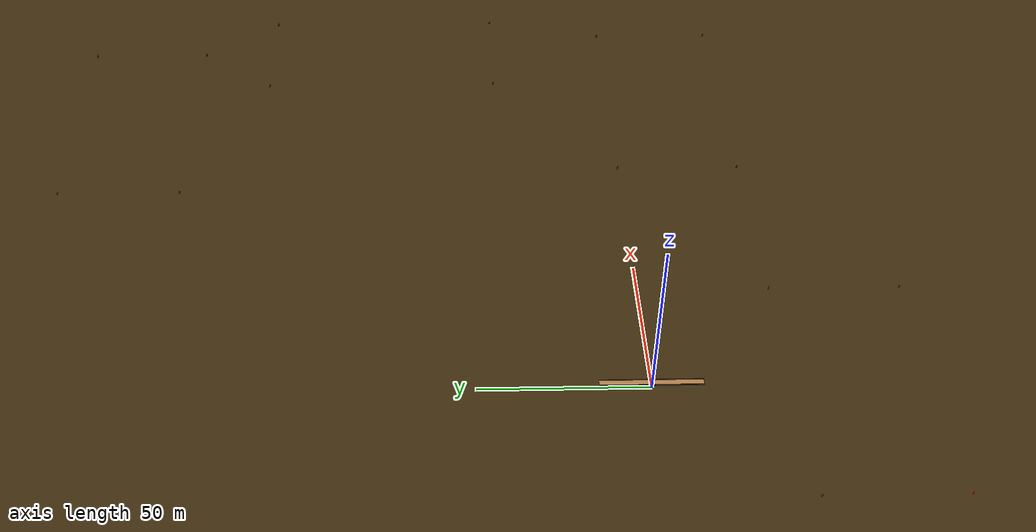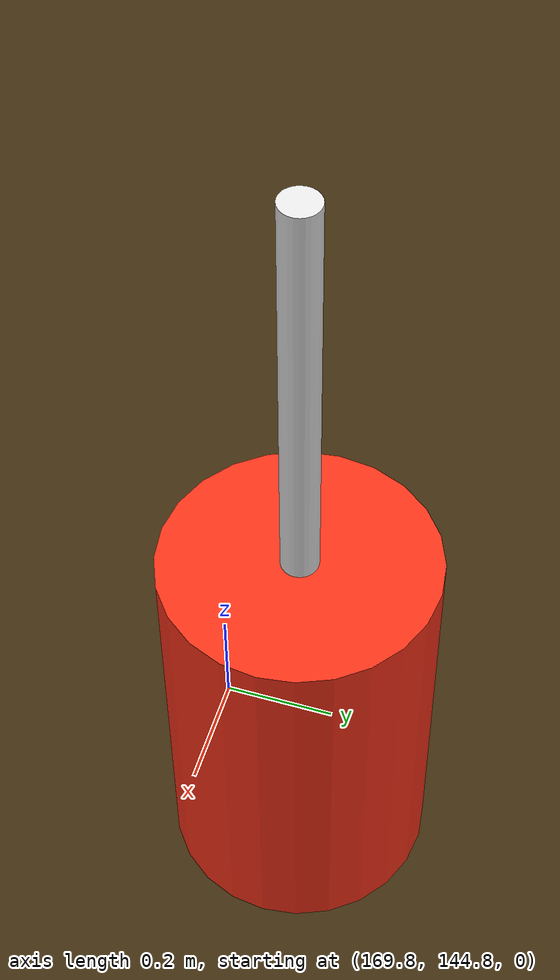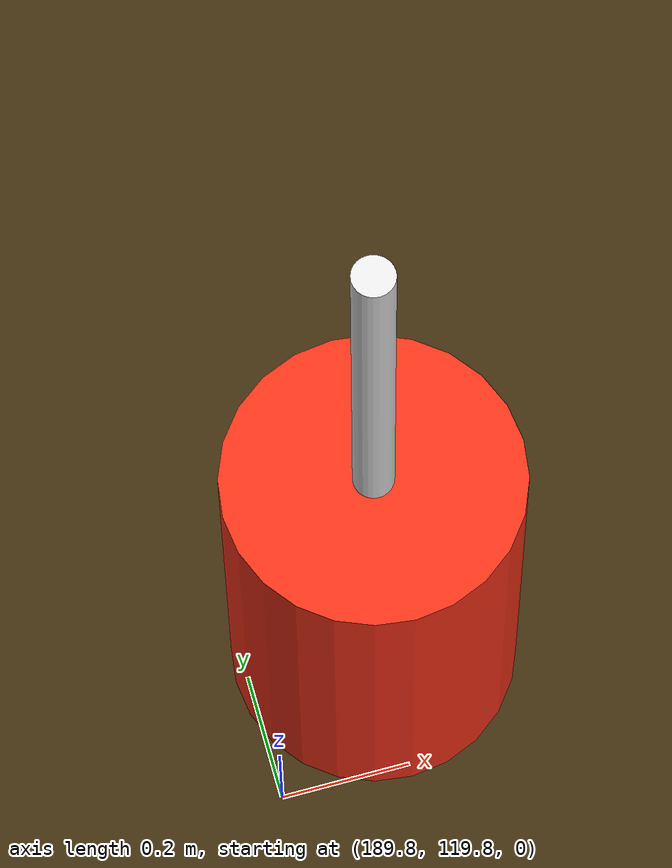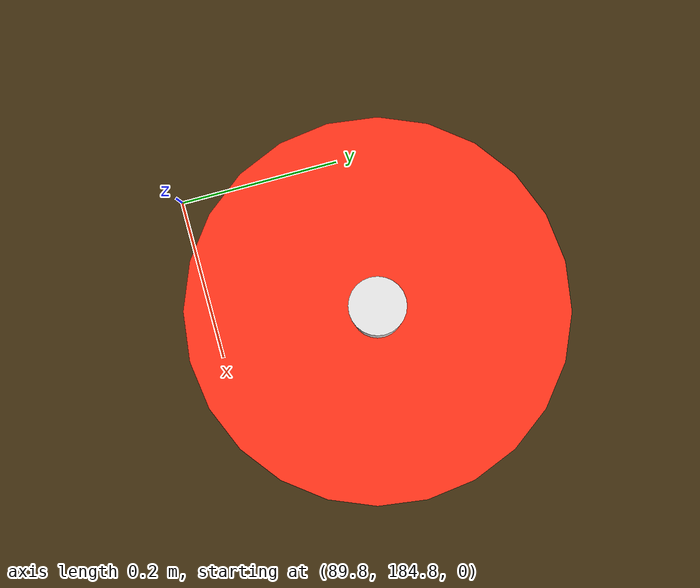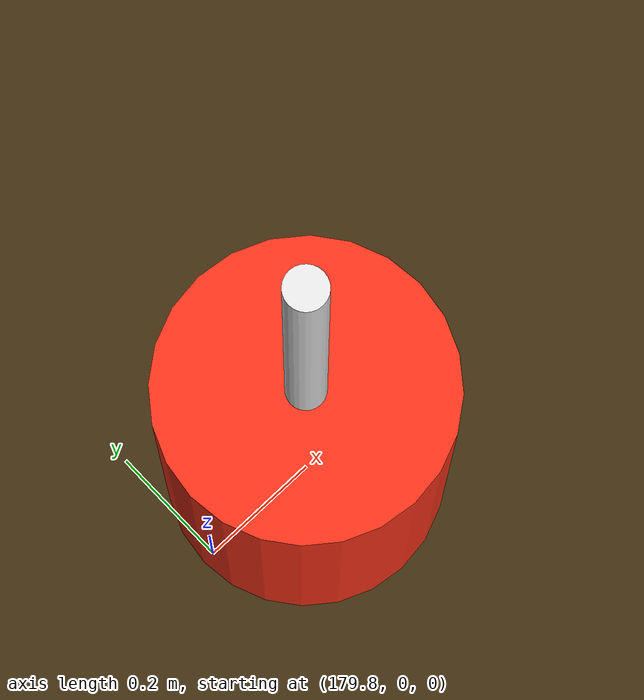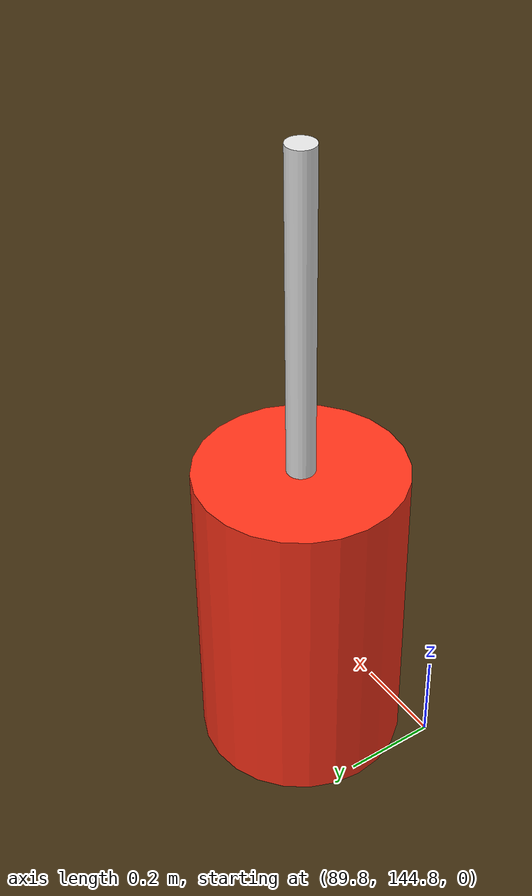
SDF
<sdf version="1.6">
 <world name="level6">
  <plugin filename="gz-sim-physics-system" name="gz::sim::systems::Physics"/>
  <plugin filename="gz-sim-sensors-system" name="gz::sim::systems::Sensors">
   <render_engine>ogre2</render_engine>
   <background_color>0.8 0.8 0.8</background_color>
  </plugin>
  <plugin filename="gz-sim-scene-broadcaster-system" name="gz::sim::systems::SceneBroadcaster"/>
  <plugin filename="gz-sim-user-commands-system" name="gz::sim::systems::UserCommands"/>
  <plugin filename="gz-sim-imu-system" name="gz::sim::systems::Imu"/>
  <plugin filename="gz-sim-navsat-system" name="gz::sim::systems::NavSat"/>
  <spherical_coordinates>
   <surface_model>EARTH_WGS84</surface_model>
   <world_frame_orientation>ENU</world_frame_orientation>
   <latitude_deg>40.595009</latitude_deg>
   <longitude_deg>-79.99974</longitude_deg>
   <elevation>0</elevation>
   <heading_deg>180</heading_deg>
  </spherical_coordinates>
  <scene><ambient>1.0 1.0 1.0</ambient><background>0.8 0.8 0.8</background></scene>
  <light type="directional" name="sun">
   <pose>0 0 10 0 0 0</pose>
   <diffuse>0.8 0.8 0.8 1</diffuse>
   <specular>0.6 0.6 0.6 1</specular>
   <direction>-0.5 0.1 -0.9</direction>
  </light>
  <include><uri>model://no_waves</uri></include>
  <include><uri>model://dock</uri><name>dock_1</name><pose>1.8 0 -.1 0 0 -1.5708</pose></include>
  <include><uri>model://buoy_marker</uri><name>B1</name><pose>-40 -80 0 0 0 0</pose></include>
  <include><uri>model://buoy_marker</uri><name>B2</name><pose>-40 -40 0 0 0 0</pose></include>
  <include><uri>model://buoy_marker</uri><name>B3</name><pose>40 -80 0 0 0 0</pose></include>
  <include><uri>model://buoy_marker</uri><name>B4</name><pose>40 -40 0 0 0 0</pose></include>
  <include><uri>model://buoy_marker</uri><name>B5</name><pose>100 -40 0 0 0 0</pose></include>
  <include><uri>model://buoy_marker</uri><name>B6</name><pose>100 0 0 0 0 0</pose></include>
  <include><uri>model://buoy_marker</uri><name>B7</name><pose>180 -40 0 0 0 0</pose></include>
  <include><uri>model://buoy_marker</uri><name>B8</name><pose>180 0 0 0 0 0</pose></include>
  <include><uri>model://buoy_marker</uri><name>B9</name><pose>150 120 0 0 0 0</pose></include>
  <include><uri>model://buoy_marker</uri><name>B10</name><pose>150 40 0 0 0 0</pose></include>
  <include><uri>model://buoy_marker</uri><name>B11</name><pose>190 120 0 0 0 0</pose></include>
  <include><uri>model://buoy_marker</uri><name>B12</name><pose>190 40 0 0 0 0</pose></include>
  <include><uri>model://buoy_marker</uri><name>B13</name><pose>90 145 0 0 0 0</pose></include>
  <include><uri>model://buoy_marker</uri><name>B14</name><pose>90 185 0 0 0 0</pose></include>
  <include><uri>model://buoy_marker</uri><name>B15</name><pose>170 145 0 0 0 0</pose></include>
  <include><uri>model://buoy_marker</uri><name>B16</name><pose>170 185 0 0 0 0</pose></include>
 </world>
</sdf>

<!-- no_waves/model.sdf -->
<sdf version="1.6">
  <model name="waves">
    <static>true</static>

    <plugin
        filename="gz-waves1-waves-model-system"
        name="gz::sim::systems::WavesModel">
      <static>1</static>
      <wave>
        <algorithm>sinusoid</algorithm>
        <tile_size>400</tile_size>
        <cell_count>8</cell_count>
        <amplitude>0</amplitude>
        <period>1</period>
      </wave>
    </plugin>

    <link name="base_link">
      <!--
        Static visual water replaces the dynamic WavesVisual deformation
        pipeline. It preserves the visible water surface without per-frame
        mesh updates.
      -->
      <visual name="visual">
        <cast_shadows>false</cast_shadows>
        <transparency>0</transparency>
        <geometry>
          <plane>
            <normal>0 0 1</normal>
            <size>800 800</size>
          </plane>
        </geometry>
        <material>
          <ambient>0.12 0.08 0.02 1</ambient>
          <diffuse>0.25 0.18 0.06 1</diffuse>
          <specular>0.15 0.12 0.08 1</specular>
          <pbr>
            <metal>
              <albedo_map>materials/water.jpg</albedo_map>
              <normal_map>materials/wave_normals.dds</normal_map>
              <environment_map>materials/skybox_lowres.dds</environment_map>
              <roughness>0.3</roughness>
              <metalness>0.1</metalness>
            </metal>
          </pbr>
        </material>
      </visual>
    </link>
  </model>
</sdf>

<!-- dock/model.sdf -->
<sdf version="1.7">
  <model name="dock">
    <static>true</static>

    <link name="dock_link">

      <!-- MAIN PLATFORM -->
      <collision name="platform_collision">
        <pose>0 0 0.1 0 0 0</pose>
        <geometry>
          <box>
            <size>30 2 0.2</size>
          </box>
        </geometry>
      </collision>

      <visual name="platform_visual">
        <pose>0 0 0.1 0 0 0</pose>
        <geometry>
          <box>
            <size>30 2 0.2</size>
          </box>
        </geometry>
        <material>
            <script>
                <uri>model://dock/materials/scripts</uri>
                <uri>model://dock/materials/textures</uri>
                <name>Dock/Wood</name>
            </script>
        </material>
      </visual>

      <!-- LEFT EDGE -->
      <collision name="left_edge_collision">
        <pose>0 -1.05 0.3 0 0 0</pose>
        <geometry>
          <box>
            <size>30 0.1 0.4</size>
          </box>
        </geometry>
      </collision>

      <visual name="left_edge_visual">
        <pose>0 -1.05 0.3 0 0 0</pose>
        <geometry>
          <box>
            <size>30 0.1 0.4</size>
          </box>
        </geometry>
        <material>
          <ambient>0.3 0.2 0.1 1</ambient>
          <diffuse>0.4 0.3 0.2 1</diffuse>
        </material>
      </visual>

      <!-- RIGHT EDGE -->
      <collision name="right_edge_collision">
        <pose>0 1.05 0.3 0 0 0</pose>
        <geometry>
          <box>
            <size>30 0.1 0.4</size>
          </box>
        </geometry>
      </collision>

      <visual name="right_edge_visual">
        <pose>0 1.05 0.3 0 0 0</pose>
        <geometry>
          <box>
            <size>30 0.1 0.4</size>
          </box>
        </geometry>
        <material>
          <ambient>0.3 0.2 0.1 1</ambient>
          <diffuse>0.4 0.3 0.2 1</diffuse>
        </material>
      </visual>

    </link>
  </model>
</sdf>

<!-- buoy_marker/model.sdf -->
<sdf version="1.9">
  <model name="buoy_marker">
    <static>true</static>

    <link name="base_link">
      <!-- Keep collision tiny so it doesn't matter physically -->
      <collision name="collision">
        <geometry>
          <cylinder>
            <radius>0.18</radius>
            <length>1.2</length>
          </cylinder>
        </geometry>
      </collision>

      <visual name="float_visual">
        <pose>0 0 0.35 0 0 0</pose>
        <geometry>
          <cylinder>
            <radius>0.22</radius>
            <length>0.7</length>
          </cylinder>
        </geometry>
        <material>
          <ambient>1.0 0.2 0.1 1.0</ambient>
          <diffuse>1.0 0.2 0.1 1.0</diffuse>
        </material>
      </visual>

      <visual name="mast_visual">
        <pose>0 0 1.0 0 0 0</pose>
        <geometry>
          <cylinder>
            <radius>0.03</radius>
            <length>0.8</length>
          </cylinder>
        </geometry>
        <material>
          <ambient>0.9 0.9 0.9 1.0</ambient>
          <diffuse>0.9 0.9 0.9 1.0</diffuse>
        </material>
      </visual>
    </link>
  </model>
</sdf>
